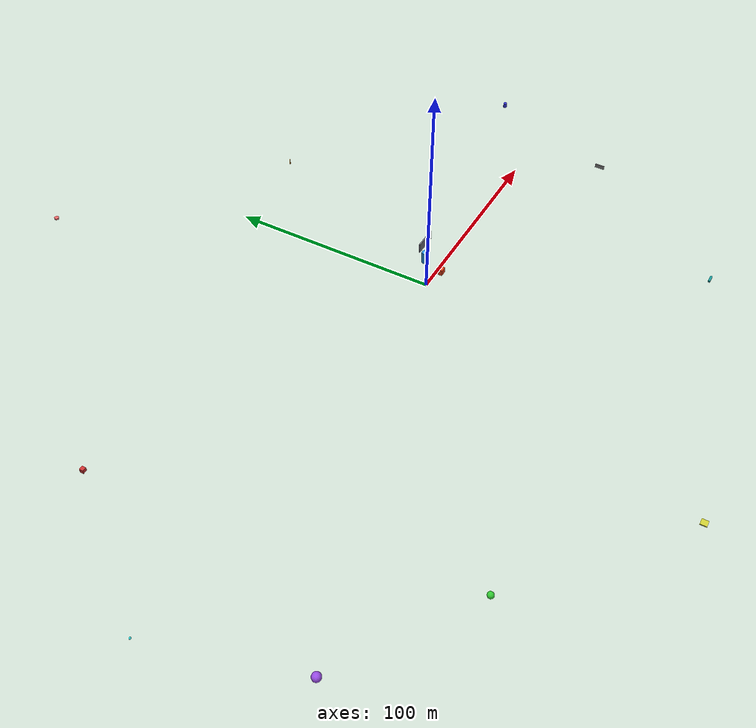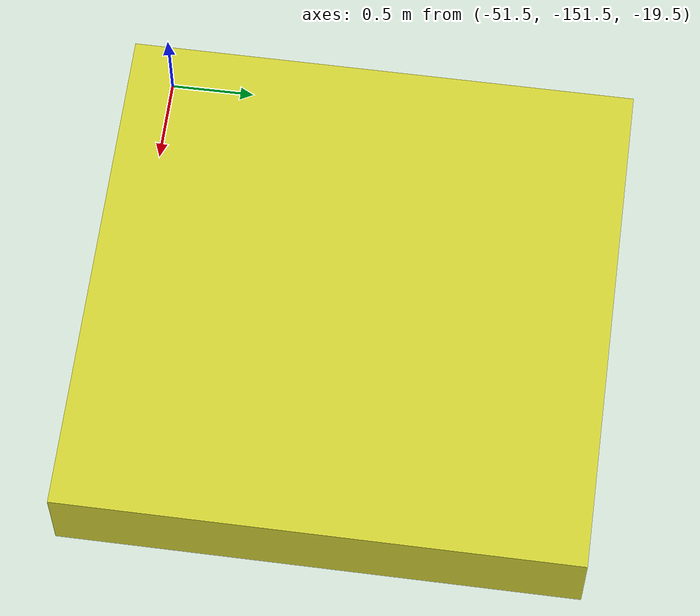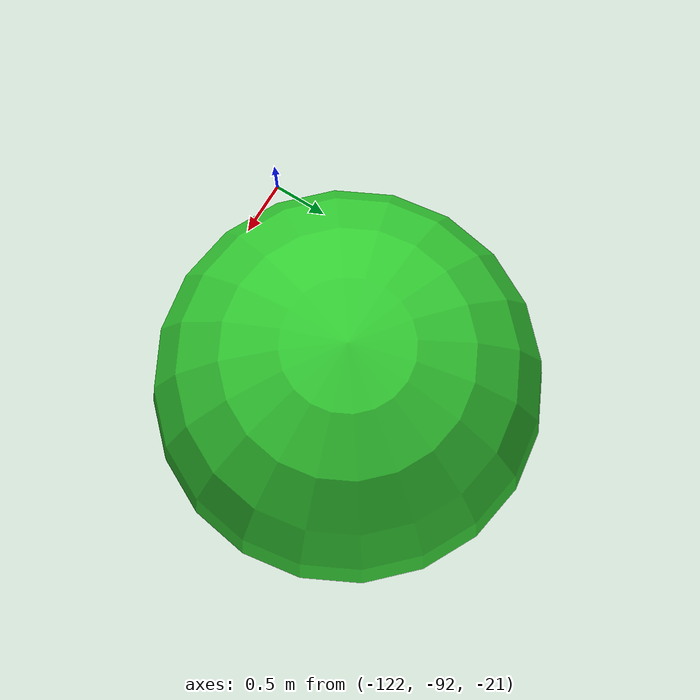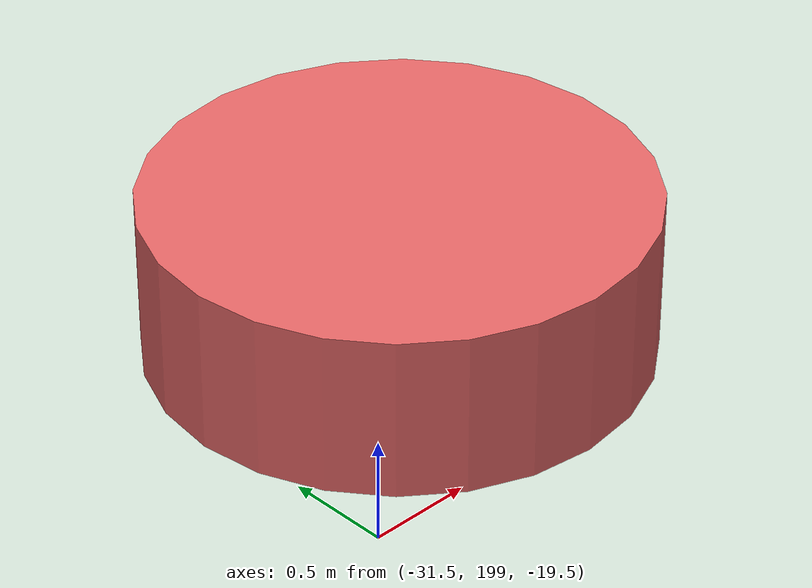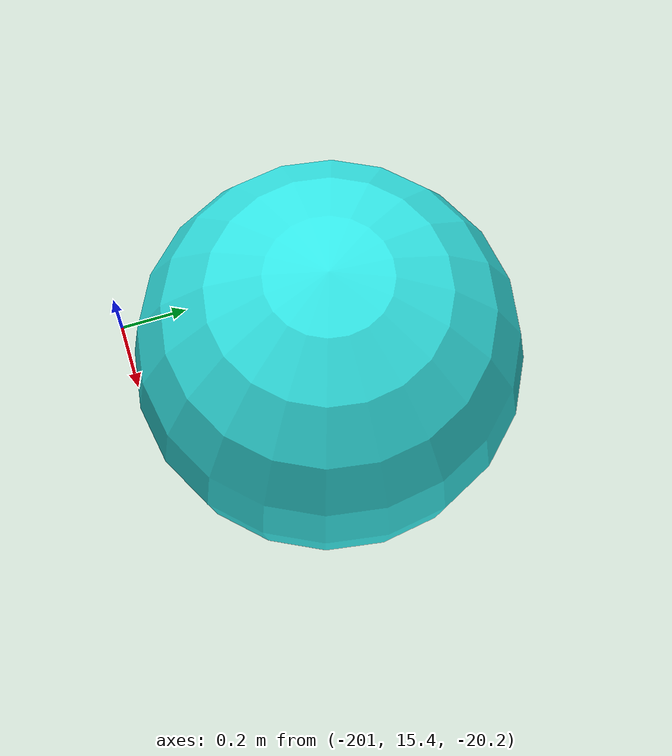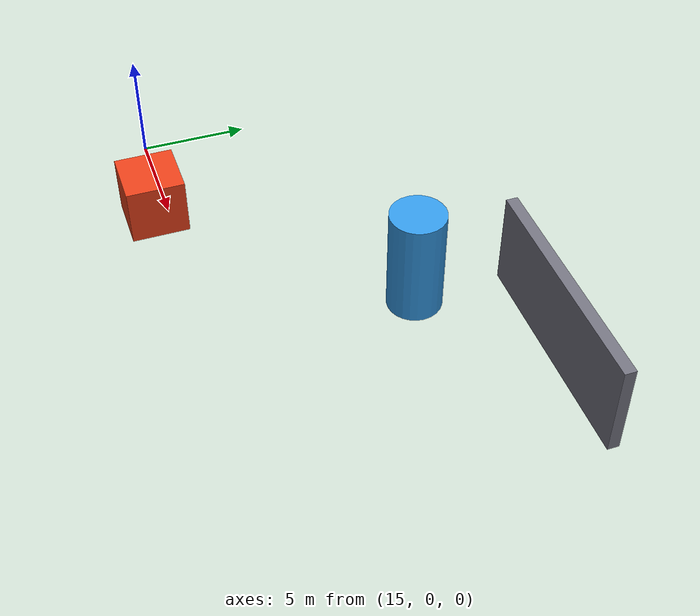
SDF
<?xml version="1.0" ?>
<sdf version="1.6">
  <world name="static_world">
    <physics name="default" type="dartsim">
      <max_step_size>0.001</max_step_size>
      <real_time_factor>1.0</real_time_factor>
    </physics>
    <plugin filename="gz-sim-physics-system" name="gz::sim::systems::Physics"/>
    <plugin filename="gz-sim-user-commands-system" name="gz::sim::systems::UserCommands"/>
    <plugin filename="gz-sim-scene-broadcaster-system" name="gz::sim::systems::SceneBroadcaster"/>
    <plugin filename="gz-sim-buoyancy-system" name="gz::sim::systems::Buoyancy">
      <uniform_fluid_density>1000</uniform_fluid_density>
    </plugin>
    <plugin filename="gz-sim-apply-link-wrench-system" name="gz::sim::systems::ApplyLinkWrench"/>
    <plugin filename="gz-sim-imu-system" name="gz::sim::systems::Imu"/>
    <plugin filename="gz-sim-magnetometer-system" name="gz::sim::systems::Magnetometer"/>
    <plugin filename="gz-sim-sensors-system" name="gz::sim::systems::Sensors">
      <render_engine>ogre2</render_engine>
    </plugin>
    <light type="directional" name="sun">
      <pose>0 0 10 0 0 0</pose>
      <diffuse>1 1 1 1</diffuse>
      <specular>0.5 0.5 0.5 1</specular>
      <attenuation><range>1000</range><constant>0.9</constant><linear>0.01</linear><quadratic>0.001</quadratic></attenuation>
      <direction>-0.5 0.1 -0.9</direction>
    </light>
    <!-- ground_plane убран: аппарат упирался в дно во время измерений плавучести -->
    <!-- 50 объектов (сокращено для читаемости, структура сохранена) -->
    <model name="obj_01"><static>true</static><pose>-150.2 80.5 -19.2 0 0 0</pose><link name="link"><visual name="visual"><geometry><box><size>2.0 2.0 2.0</size></box></geometry><material><ambient>0.8 0.2 0.2 1</ambient></material></visual><collision name="collision"><geometry><box><size>2.0 2.0 2.0</size></box></geometry></collision></link></model>
    <model name="obj_02"><static>true</static><pose>-120.5 -90.3 -19.5 0 0 0</pose><link name="link"><visual name="visual"><geometry><sphere><radius>1.5</radius></sphere></geometry><material><ambient>0.2 0.8 0.2 1</ambient></material></visual><collision name="collision"><geometry><sphere><radius>1.5</radius></sphere></geometry></collision></link></model>
    <model name="obj_03"><static>true</static><pose>180.2 40.1 -19.0 0 0 0</pose><link name="link"><visual name="visual"><geometry><cylinder><radius>1.0</radius><length>2.5</length></cylinder></geometry><material><ambient>0.2 0.2 0.8 1</ambient></material></visual><collision name="collision"><geometry><cylinder><radius>1.0</radius><length>2.5</length></cylinder></geometry></collision></link></model>
    <model name="obj_04"><static>true</static><pose>-50.0 -150.2 -19.3 0 0 0</pose><link name="link"><visual name="visual"><geometry><box><size>3.0 3.0 0.5</size></box></geometry><material><ambient>0.8 0.8 0.2 1</ambient></material></visual><collision name="collision"><geometry><box><size>3.0 3.0 0.5</size></box></geometry></collision></link></model>
    <model name="obj_05"><static>true</static><pose>70.3 120.4 -18.8 0 0 0</pose><link name="link"><visual name="visual"><geometry><cylinder><radius>0.3</radius><length>3.0</length></cylinder></geometry><material><ambient>0.8 0.5 0.1 1</ambient></material></visual><collision name="collision"><geometry><cylinder><radius>0.3</radius><length>3.0</length></cylinder></geometry></collision></link></model>
    <model name="obj_06"><static>true</static><pose>-180.0 -50.6 -19.7 0 0 0</pose><link name="link"><visual name="visual"><geometry><sphere><radius>2.0</radius></sphere></geometry><material><ambient>0.6 0.3 0.9 1</ambient></material></visual><collision name="collision"><geometry><sphere><radius>2.0</radius></sphere></geometry></collision></link></model>
    <model name="obj_07"><static>true</static><pose>90.8 -110.2 -19.4 0 0 0</pose><link name="link"><visual name="visual"><geometry><box><size>4.0 1.0 1.0</size></box></geometry><material><ambient>0.1 0.6 0.6 1</ambient></material></visual><collision name="collision"><geometry><box><size>4.0 1.0 1.0</size></box></geometry></collision></link></model>
    <model name="obj_08"><static>true</static><pose>-30.4 200.0 -19.1 0 0 0</pose><link name="link"><visual name="visual"><geometry><cylinder><radius>1.2</radius><length>0.8</length></cylinder></geometry><material><ambient>0.9 0.4 0.4 1</ambient></material></visual><collision name="collision"><geometry><cylinder><radius>1.2</radius><length>0.8</length></cylinder></geometry></collision></link></model>
    <model name="obj_09"><static>true</static><pose>150.7 -30.2 -19.2 0 0 0</pose><link name="link"><visual name="visual"><geometry><box><size>0.5 5.0 2.0</size></box></geometry><material><ambient>0.5 0.5 0.5 1</ambient></material></visual><collision name="collision"><geometry><box><size>0.5 5.0 2.0</size></box></geometry></collision></link></model>
    <model name="obj_10"><static>true</static><pose>-200.5 15.9 -19.6 0 0 0</pose><link name="link"><visual name="visual"><geometry><sphere><radius>0.5</radius></sphere></geometry><material><ambient>0.2 0.9 0.9 1</ambient></material></visual><collision name="collision"><geometry><sphere><radius>0.5</radius></sphere></geometry></collision></link></model>
    <!-- ===== ДЕМО-ПРЕПЯТСТВИЯ (на глубине маршрута z=-3) ===== -->
    <!-- БЛОК ровно на пути старт(0,0)->WP1(30,0): аппарат должен ОБОЙТИ.
         Куб 3×3×3, центр на линии маршрута (15,0,-3). -->
    <model name="demo_block"><static>true</static><pose>15.0 0 -3.0 0 0 0</pose><link name="link"><visual name="visual"><geometry><box><size>3.0 3.0 3.0</size></box></geometry><material><ambient>0.9 0.25 0.1 1</ambient><diffuse>0.9 0.25 0.1 1</diffuse></material></visual><collision name="collision"><geometry><box><size>3.0 3.0 3.0</size></box></geometry></collision></link></model>
    <model name="demo_wall"><static>true</static><pose>30.0 16.0 -3.0 0 0 0</pose><link name="link"><visual name="visual"><geometry><box><size>12.0 0.6 5.0</size></box></geometry><material><ambient>0.45 0.45 0.5 1</ambient><diffuse>0.45 0.45 0.5 1</diffuse></material></visual><collision name="collision"><geometry><box><size>12.0 0.6 5.0</size></box></geometry></collision></link></model>
     <!-- ===== Доп. блок на 3-м сегменте WP2(30,12,-7)->WP3(15,12,2) ===== -->
    <!-- Цилиндр на (22,12,-5): проверка обхода при смене глубины. -->
    <model name="test_block2"><static>true</static><pose>22.0 12.0 -5.0 0 0 0</pose><link name="link"><visual name="visual"><geometry><cylinder><radius>1.5</radius><length>6.0</length></cylinder></geometry><material><ambient>0.2 0.6 0.9 1</ambient><diffuse>0.2 0.6 0.9 1</diffuse></material></visual><collision name="collision"><geometry><cylinder><radius>1.5</radius><length>6.0</length></cylinder></geometry></collision></link></model>

  </world>
</sdf>
